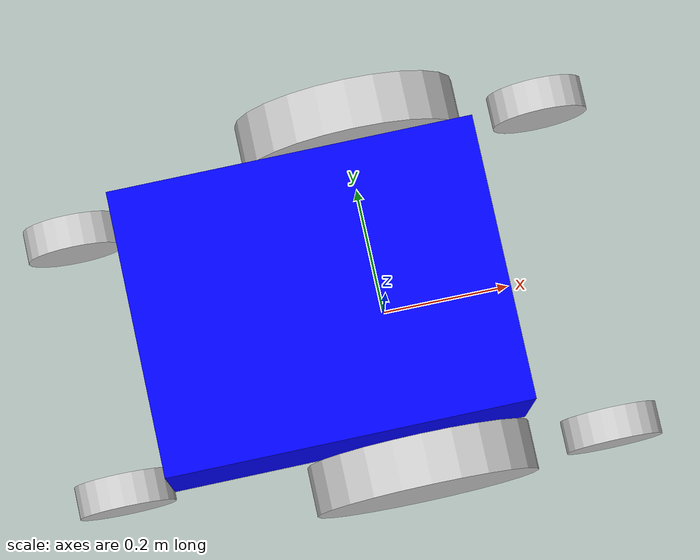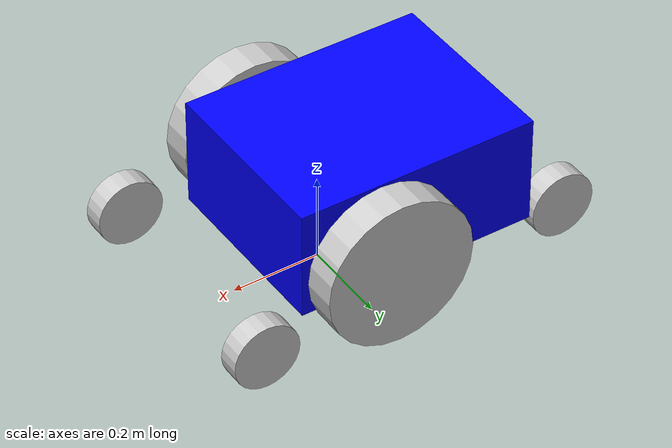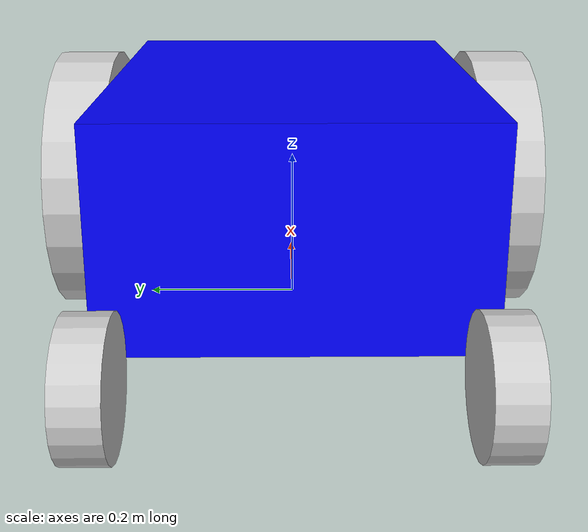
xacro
<?xml version="1.0"?>
<robot xmlns:xacro="http://www.ros.org/wiki/xacro">

    <!-- Imports -->
    <xacro:include filename="params.xacro" />
    <xacro:include filename="wheels.xacro" />
    <xacro:include filename="inertial_macros.xacro" />

    <!-- Materials -->
    <material name="plastic_shell">
        <color rgba="0 0 1 1" />
    </material>

    <!-- Base link -->
    <link name="base_footprint"></link>
    <link name="base_link"></link>

    <joint name="footprint_joint" type="fixed">
        <parent link="base_footprint"/>
        <child link="base_link"/>
        <origin xyz="0 0 ${drive_wheel_radius}"/>
    </joint>

    <!-- Chassis -->
    <link name="chassis">
        <visual>
            <origin xyz="0 0 0"/>
            <geometry>
                <box size="${chassis_length} ${chassis_width} ${chassis_height}"/>
            </geometry>
            <material name="plastic_shell"/>
        </visual>
        <collision>
            <origin xyz="0 0 0"/>
            <geometry>
                <box size="${chassis_length} ${chassis_width} ${chassis_height}"/>
            </geometry>
        </collision>
        <xacro:inertial_box mass="50.0" x="${chassis_length}" y="${chassis_width}" z="${chassis_height}">
            <origin xyz="0 0 0" rpy="0 0 0" />
        </xacro:inertial_box>
    </link>

    <joint name="chassis_joint" type="fixed">
        <parent link="base_link"/>
        <child link="chassis"/>
        <origin xyz="${chassis_X_offset} 0 ${chassis_height/2 - drive_wheel_radius + chassis_Z_offset}"/>
    </joint>

    <!-- Drive Wheels -->
    <xacro:drive_wheel name="drive_wheel_L"></xacro:drive_wheel>

    <joint name="drive_wheel_L_joint" type="continuous">
        <parent link="base_link"/>
        <child link="drive_wheel_L"/>
        <origin xyz="0 ${drive_wheels_Y_spacing/2} 0" rpy="0 0 0" />
        <axis xyz="0 1 0"/>
    </joint>

    <xacro:drive_wheel name="drive_wheel_R"></xacro:drive_wheel>

    <joint name="drive_wheel_R_joint" type="continuous">
        <parent link="base_link"/>
        <child link="drive_wheel_R"/>
        <origin xyz="0 -${drive_wheels_Y_spacing/2} 0" rpy="${pi} 0 0" />
        <axis xyz="0 -1 0"/>
    </joint>

    <!-- Caster Wheels -->
    <xacro:caster_wheel name="caster_wheel_FL"></xacro:caster_wheel>

    <joint name="caster_wheel_FL_joint" type="fixed">
        <parent link="base_link"/>
        <child link="caster_wheel_FL"/>
        <origin xyz="${caster_wheels_F_X_offset} ${caster_wheels_F_Y_spacing/2} ${-drive_wheel_radius + caster_wheel_radius + caster_wheel_Z_offset + 0.01}" rpy="0 0 0" />
    </joint>

    <xacro:caster_wheel name="caster_wheel_FR"></xacro:caster_wheel>

    <joint name="caster_wheel_FR_joint" type="fixed">
        <parent link="base_link"/>
        <child link="caster_wheel_FR"/>
        <origin xyz="${caster_wheels_F_X_offset} -${caster_wheels_F_Y_spacing/2} ${-drive_wheel_radius + caster_wheel_radius + caster_wheel_Z_offset + 0.01}" rpy="0 0 0" />
    </joint>

    <xacro:caster_wheel name="caster_wheel_RL"></xacro:caster_wheel>

    <joint name="caster_wheel_RL_joint" type="fixed">
        <parent link="base_link"/>
        <child link="caster_wheel_RL"/>
        <origin xyz="${caster_wheels_R_X_offset} ${caster_wheels_R_Y_spacing/2} ${-drive_wheel_radius + caster_wheel_radius + caster_wheel_Z_offset + 0.01}" rpy="0 0 0" />
    </joint>

    <xacro:caster_wheel name="caster_wheel_RR"></xacro:caster_wheel>

    <joint name="caster_wheel_RR_joint" type="fixed">
        <parent link="base_link"/>
        <child link="caster_wheel_RR"/>
        <origin xyz="${caster_wheels_R_X_offset} -${caster_wheels_R_Y_spacing/2} ${-drive_wheel_radius + caster_wheel_radius + caster_wheel_Z_offset + 0.01}" rpy="0 0 0" />
    </joint>

</robot>

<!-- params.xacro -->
<robot xmlns:xacro="http://www.ros.org/wiki/xacro">

    <xacro:property name="drive_wheel_radius" value="0.17" /> <!-- TODO: Calibrate Drive wheel radius -->
    <xacro:property name="drive_wheel_thickness" value="0.075" />
    <xacro:property name="caster_wheel_radius" value="0.075" />
    <xacro:property name="caster_wheel_thickness" value="0.05" />
    <xacro:property name="caster_wheel_X_offset" value="0.05" />
    <xacro:property name="caster_wheel_Z_offset" value="0.09" />

    <xacro:property name="chassis_width" value="0.43" />
    <xacro:property name="chassis_length" value="0.55" />
    <xacro:property name="chassis_height" value="0.25" />
    <xacro:property name="chassis_X_offset" value="-0.1" />
    <xacro:property name="chassis_Z_offset" value="0.08" />
    <xacro:property name="drive_wheels_Y_spacing" value="0.46" />
    <xacro:property name="caster_wheels_F_Y_spacing" value="0.52" />
    <xacro:property name="caster_wheels_R_Y_spacing" value="0.405" />
    <xacro:property name="caster_wheels_F_X_offset" value="0.35" />
    <xacro:property name="caster_wheels_R_X_offset" value="-0.4" />

</robot>

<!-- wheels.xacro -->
<robot xmlns:xacro="http://www.ros.org/wiki/xacro">

    <!-- Imports -->
    <xacro:include filename="params.xacro" />

    <!-- Materials -->
    <material name="wheel_rubber">
        <color rgba="0.8 0.8 0.8 1" />
    </material>

    <!-- Macros -->
    <!-- Drive Wheels -->
    <xacro:macro name="drive_wheel" params="name">
        <link name="${name}">
            <visual>
                <origin xyz="0 ${drive_wheel_thickness/2} 0" rpy="-${pi/2} 0 0" />
                <geometry>
                    <cylinder radius="${drive_wheel_radius}" length="${drive_wheel_thickness}" />
                </geometry>
                <material name="wheel_rubber" />
            </visual>
            <collision>
                <origin xyz="0 ${drive_wheel_thickness/2} 0" rpy="-${pi/2} 0 0" />
                <geometry>
                    <cylinder radius="${drive_wheel_radius}" length="${drive_wheel_thickness}" />
                </geometry>
            </collision>
            <xacro:inertial_cylinder mass="2.0" radius="${drive_wheel_radius}" length="${drive_wheel_thickness}">
                <origin xyz="0 ${drive_wheel_thickness/2} 0" rpy="-${pi/2} 0 0" />
            </xacro:inertial_cylinder>
        </link>
    </xacro:macro>

    <!-- Caster Wheels -->
    <xacro:macro name="caster_wheel" params="name">
        <link name="${name}">
            <visual>
                <origin xyz="-${caster_wheel_X_offset} 0 -${caster_wheel_Z_offset}" rpy="-${pi/2} 0 0" />
                <geometry>
                    <cylinder radius="${caster_wheel_radius}" length="${caster_wheel_thickness}"/>
                </geometry>
                <material name="wheel_rubber" />
            </visual>
            <collision>
                <origin xyz="-${caster_wheel_X_offset} 0 -${caster_wheel_Z_offset}" rpy="-${pi/2} 0 0" />
                <geometry>
                    <cylinder radius="${caster_wheel_radius}" length="${caster_wheel_thickness}"/>
                </geometry>
            </collision>
            <xacro:inertial_cylinder mass="1.0" radius="${caster_wheel_radius}" length="${caster_wheel_thickness}">
                <origin xyz="-${caster_wheel_X_offset} 0 -${caster_wheel_Z_offset}" rpy="-${pi/2} 0 0" />
            </xacro:inertial_cylinder>
        </link>
    </xacro:macro>
</robot>
